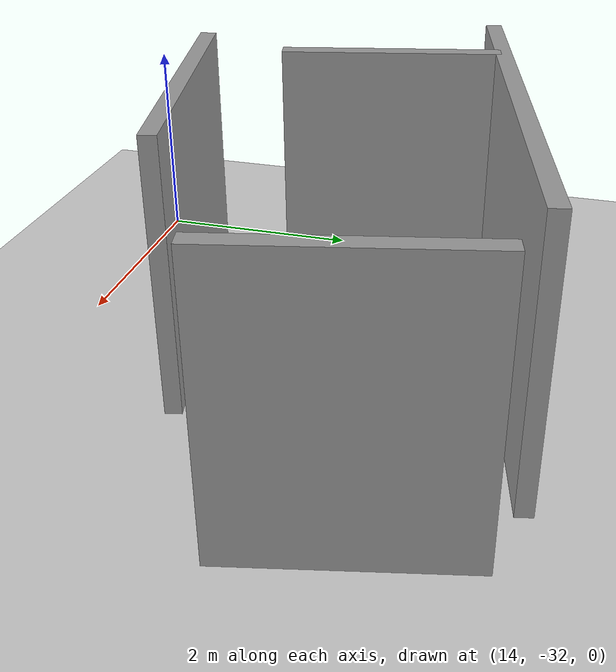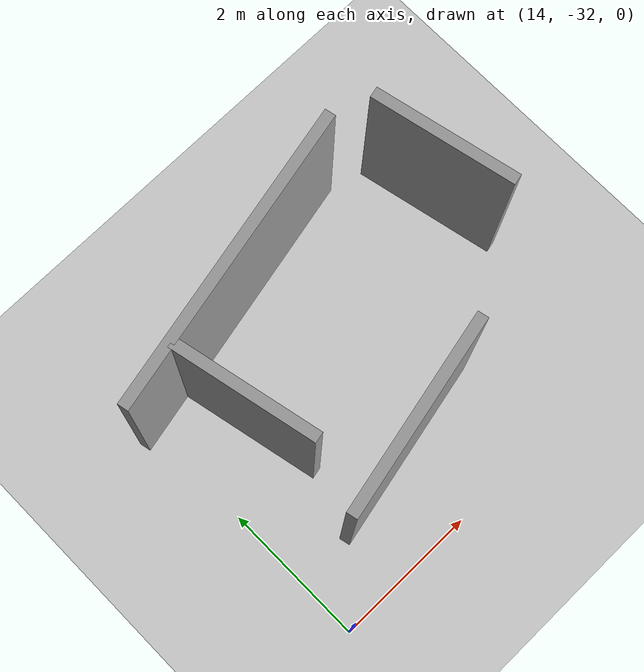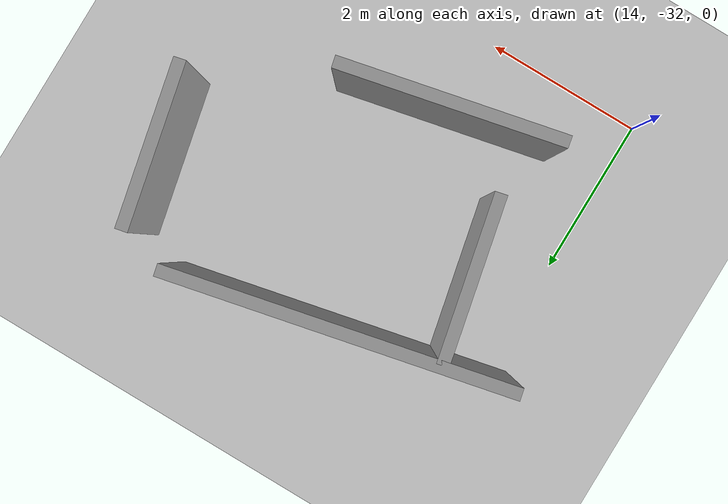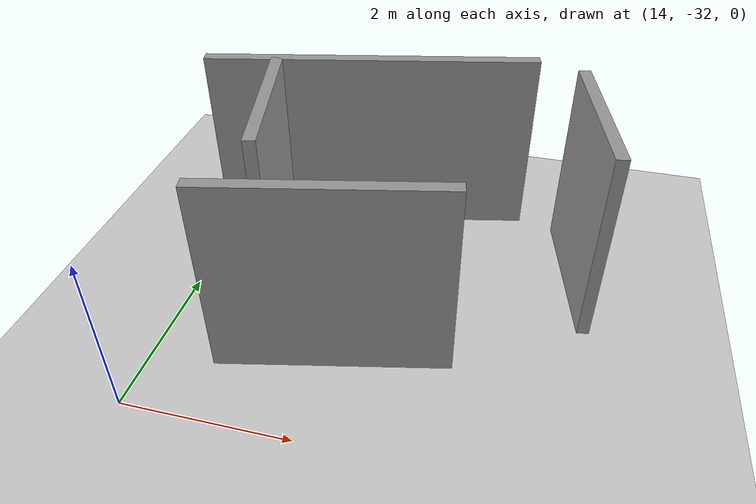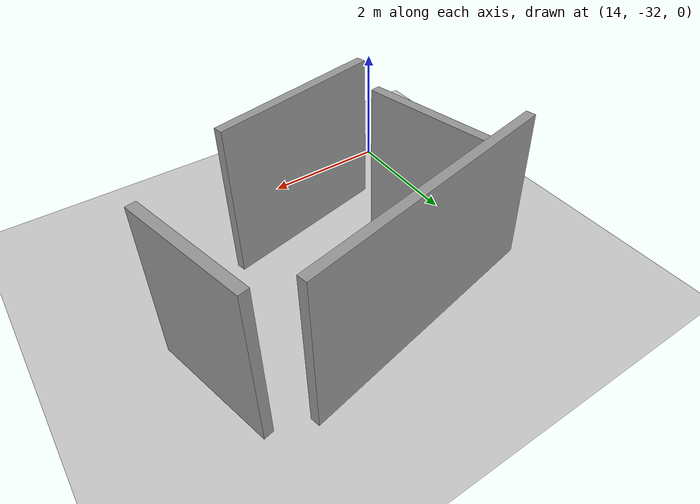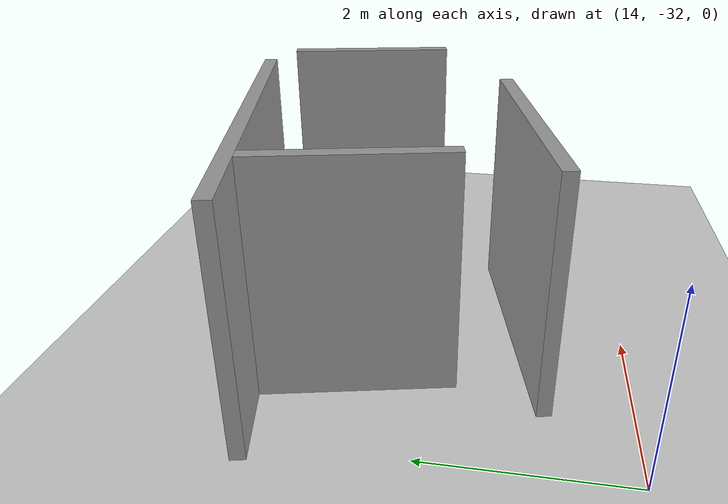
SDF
<sdf version="1.6">
 <world name="default">
  <model name="ground_plane">
   <static>1</static>
   <link name="link">
    <collision name="collision">
     <geometry><plane><normal>0 0 1</normal><size>100 100</size></plane></geometry>
     <surface><friction><ode><mu>100</mu><mu2>50</mu2></ode></friction></surface>
    </collision>
    <visual name="visual">
     <cast_shadows>0</cast_shadows>
     <geometry><plane><normal>0 0 1</normal><size>100 100</size></plane></geometry>
     <material>
      <script><uri>file://media/materials/scripts/gazebo.material</uri><name>Gazebo/Grey</name></script>
     </material>
    </visual>
   </link>
  </model>
  <model name="obs2_2">
   <pose>16.2537 -29.2371 0 0 -0 1.00052</pose>
   <link name="Wall_0">
    <collision name="Wall_0_Collision">
     <geometry><box><size>2 0.15 2.5</size></box></geometry>
     <pose>0 0 1.25 0 -0 0</pose>
    </collision>
    <visual name="Wall_0_Visual">
     <pose>0 0 1.25 0 -0 0</pose>
     <geometry><box><size>2 0.15 2.5</size></box></geometry>
     <material>
      <script><uri>file://media/materials/scripts/gazebo.material</uri><name>Gazebo/Grey</name></script>
      <ambient>1 1 1 1</ambient>
     </material>
    </visual>
    <pose>-0.796332 1.10862 0 0 -0 0.785398</pose>
   </link>
   <link name="Wall_2">
    <collision name="Wall_2_Collision">
     <geometry><box><size>4.25 0.15 2.5</size></box></geometry>
     <pose>0 0 1.25 0 -0 0</pose>
    </collision>
    <visual name="Wall_2_Visual">
     <pose>0 0 1.25 0 -0 0</pose>
     <geometry><box><size>4.25 0.15 2.5</size></box></geometry>
     <material>
      <script><uri>file://media/materials/scripts/gazebo.material</uri><name>Gazebo/Grey</name></script>
      <ambient>1 1 1 1</ambient>
     </material>
    </visual>
    <pose>0.773928 0.982661 0 0 0 -0.785398</pose>
   </link>
   <link name="Wall_4">
    <collision name="Wall_4_Collision">
     <geometry><box><size>2.75 0.15 2.5</size></box></geometry>
     <pose>0 0 1.25 0 -0 0</pose>
    </collision>
    <visual name="Wall_4_Visual">
     <pose>0 0 1.25 0 -0 0</pose>
     <geometry><box><size>2.75 0.15 2.5</size></box></geometry>
     <material>
      <script><uri>file://media/materials/scripts/gazebo.material</uri><name>Gazebo/Grey</name></script>
      <ambient>1 1 1 1</ambient>
     </material>
    </visual>
    <pose>-1.45556 -0.740711 0 0 0 -0.785398</pose>
   </link>
   <link name="Wall_6">
    <collision name="Wall_6_Collision">
     <geometry><box><size>2 0.15 2.5</size></box></geometry>
     <pose>0 0 1.25 0 -0 0</pose>
    </collision>
    <visual name="Wall_6_Visual">
     <pose>0 0 1.25 0 -0 0</pose>
     <geometry><box><size>2 0.15 2.5</size></box></geometry>
     <material>
      <script><uri>file://media/materials/scripts/gazebo.material</uri><name>Gazebo/Grey</name></script>
      <ambient>1 1 1 1</ambient>
     </material>
    </visual>
    <pose>1.72073 -1.77816 0 0 -0 0.785398</pose>
   </link>
   <static>1</static>
  </model>
 </world>
</sdf>
